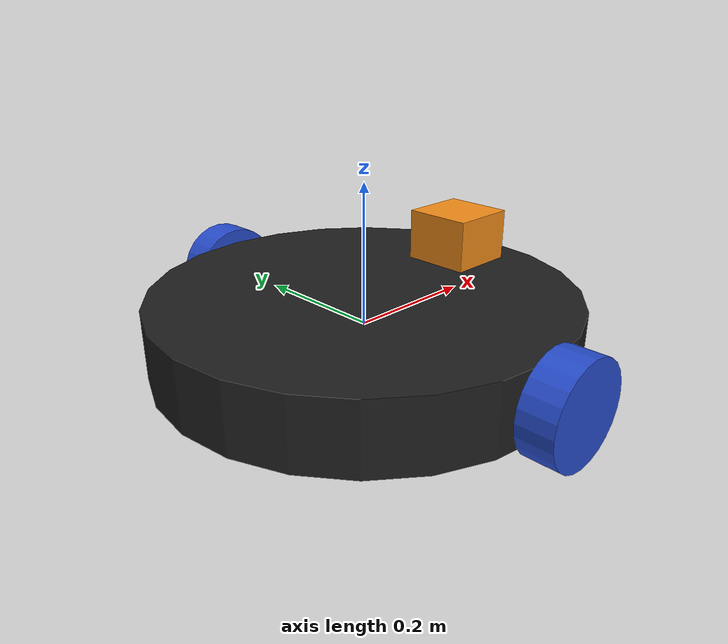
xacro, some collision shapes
<?xml version='1.0'?>

<robot name="my_robot" xmlns:xacro="http://www.ros.org/wiki/xacro">
<xacro:include filename="$(find my_robot)/urdf/my_robot.gazebo" />

  <link name="robot_footprint"></link>

  <joint name="robot_footprint_joint" type="fixed">
    <origin xyz="0 0 0" rpy="0 0 0" />
    <parent link="robot_footprint"/>
    <child link="chassis" />
  </joint>

  <link name='chassis'>
    <pose>0 0 0 0 0 0</pose>

    <inertial>
      <mass value="15.0"/>
      <origin xyz="0 0 0" rpy=" 0 0 0"/>
      <inertia
          ixx="0.15" ixy="0" ixz="0"
          iyy="0.15" iyz="0"
          izz="0.15"
      />
    </inertial>

    <collision name='collision'>
      <origin xyz="0 0 0" rpy=" 0 0 0"/>
      <geometry>
        <cylinder radius=".3" length=".1"/>
      </geometry>
    </collision>

    <visual name='chassis_visual'>
      <origin xyz="0 0 0" rpy=" 0 0 0"/>
      <geometry>
        <cylinder radius=".3" length=".1"/>
      </geometry>
    </visual>

    <collision name='back_caster_collision'>
      <origin xyz="-0.2 0 -0.02" rpy=" 0 0 0"/>
      <geometry>
        <sphere radius="0.05"/>
      </geometry>
    </collision>

    <visual name='back_caster_visual'>
      <origin xyz="-0.2 0 -0.02" rpy=" 0 0 0"/>
      <geometry>
        <sphere radius="0.05"/>
      </geometry>
    </visual>

    <collision name='front_caster_collision'>
      <origin xyz="0.2 0 -0.02" rpy=" 0 0 0"/>
      <geometry>
        <sphere radius="0.05"/>
      </geometry>
    </collision>

    <visual name='front_caster_visual'>
      <origin xyz="0.2 0 -0.02" rpy=" 0 0 0"/>
      <geometry>
        <sphere radius="0.05"/>
      </geometry>
    </visual>

  </link>

  <!-- left wheel link and joint -->
  <link name='left_wheel'>
    <inertial>
      <mass value="5.0"/>
      <origin xyz="0.0 0 0" rpy=" 0 1.5707 1.5707"/>
      <inertia
          ixx="0.1" ixy="0" ixz="0"
          iyy="0.1" iyz="0"
          izz="0.1"
      />
    </inertial>
    <collision name='left_wheel_collision'>
      <origin xyz="0 0 0" rpy=" 0 1.5707 1.5707"/>
      <geometry>
        <cylinder length="0.05" radius="0.07"/>
      </geometry>
    </collision>
    <visual name='left_wheel_visual'>
      <origin xyz="0 0 0" rpy=" 0 1.5707 1.5707"/>
      <geometry>
        <cylinder length="0.05" radius="0.07"/>
      </geometry>
    </visual>
  </link>

  <joint type="continuous" name="left_wheel_hinge">
    <origin xyz="0 0.3275 0" rpy="0 0 0"/>
    <child link="left_wheel"/>
    <parent link="chassis"/>
    <axis xyz="0 1 0" rpy="0 0 0"/>
    <limit effort="10000" velocity="1000"/>
    <dynamics damping="1.0" friction="1.0"/>
  </joint>

  <!-- right wheel link and joint -->
    <link name='right_wheel'>
    <inertial>
      <mass value="5.0"/>
      <origin xyz="0.0 0 0" rpy=" 0 1.5707 1.5707"/>
      <inertia
          ixx="0.1" ixy="0" ixz="0"
          iyy="0.1" iyz="0"
          izz="0.1"
      />
    </inertial>
    <collision name='right_wheel_collision'>
      <origin xyz="0 0 0" rpy=" 0 1.5707 1.5707"/>
      <geometry>
        <cylinder length="0.05" radius="0.07"/>
      </geometry>
    </collision>
    <visual name='right_wheel_visual'>
      <origin xyz="0 0 0" rpy=" 0 1.5707 1.5707"/>
      <geometry>
        <cylinder length="0.05" radius="0.07"/>
      </geometry>
    </visual>
  </link>

  <joint type="continuous" name="right_wheel_hinge">
    <origin xyz="0 -0.3275 0" rpy="0 0 0"/>
    <child link="right_wheel"/>
    <parent link="chassis"/>
    <axis xyz="0 1 0" rpy="0 0 0"/>
    <limit effort="10000" velocity="1000"/>
    <dynamics damping="1.0" friction="1.0"/>
  </joint>

  <!-- camera link and joint -->
   <link name='camera'>
    <inertial>
      <mass value="0.1"/>
      <origin xyz="0.0 0 0" rpy=" 0 0 0"/>
      <inertia
          ixx="1e-6" ixy="0" ixz="0"
          iyy="1e-6" iyz="0"
          izz="1e-6"
      />
    </inertial>
    <collision name='camera_collision'>
      <origin xyz="0 0 0" rpy=" 0 0 0"/>
      <geometry>
        <box size="0.05 0.05 0.05"/>
      </geometry>
    </collision>
    <visual name='camera_visual'>
      <origin xyz="0 0 0" rpy=" 0 0 0"/>
      <geometry>
        <box size="0.05 0.05 0.05"/>
      </geometry>
    </visual>
   </link>

  <joint type="fixed" name="camera_joint">
    <origin xyz="0.285 0 0" rpy="0 0 0"/>
    <child link="camera"/>
    <parent link="chassis"/>
    <axis xyz="0 1 0" rpy="0 0 0"/>
  </joint>

   <!-- Lidar link and joint -->
   <link name='hokuyo'>
    <inertial>
      <mass value="1e-5"/>
      <origin xyz="0.0 0 0" rpy=" 0 0 0"/>
      <inertia
          ixx="1e-6" ixy="0" ixz="0"
          iyy="1e-6" iyz="0"
          izz="1e-6"
      />
    </inertial>
    <collision name='hokuyo_collision'>
      <origin xyz="0 0 0" rpy=" 0 0 0"/>
      <geometry>
        <box size="0.1 0.1 0.1"/>
      </geometry>
    </collision>
     <visual name='hokuyo_visual'>
        <origin xyz="0 0 0" rpy=" 0 0 0"/>
        <geometry>
          <mesh filename="package://my_robot/meshes/hokuyo.dae"/>
        </geometry>
     </visual>
   </link>

  <joint type="fixed" name="hokuyo_joint">
    <origin xyz="0.2 0 0.075" rpy="0 0 0"/>
    <child link="hokuyo"/>
    <parent link="chassis"/>
    <axis xyz="0 1 0" rpy="0 0 0"/>
  </joint>

<!-- Adding color to robot links -->
<gazebo reference="left_wheel">
    <material>Gazebo/Blue</material>
</gazebo>
<gazebo reference="right_wheel">
    <material>Gazebo/Blue</material>
</gazebo>
<gazebo reference="chassis">
    <material>Gazebo/Black</material>
</gazebo>
<gazebo reference="camera">
    <material>Gazebo/Red</material>
</gazebo>
<gazebo reference="hokuyo">
    <material>Gazebo/Orange</material>
</gazebo>
</robot>
